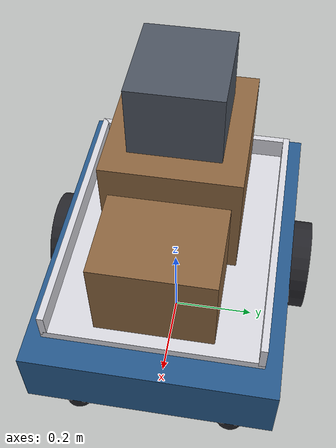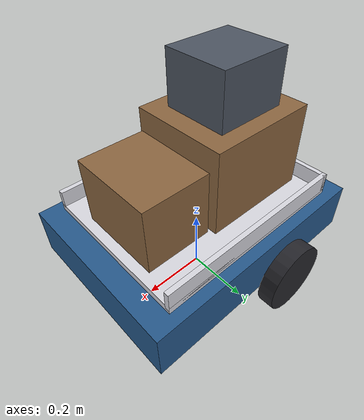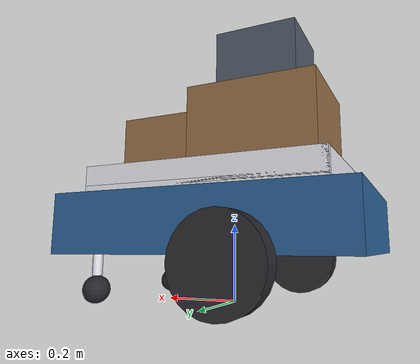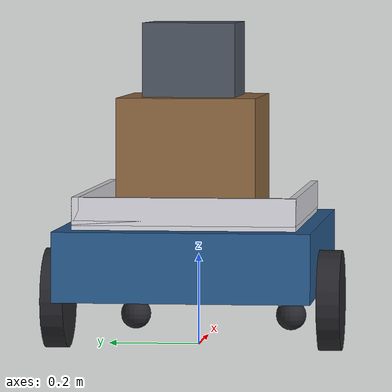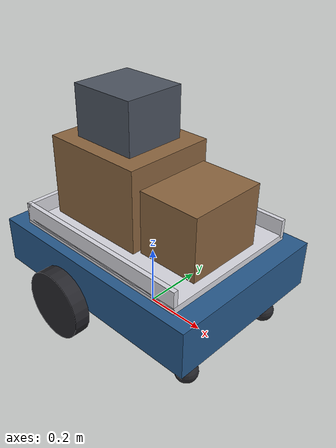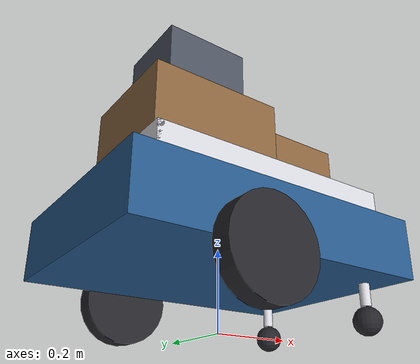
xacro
<?xml version="1.0"?>
<robot xmlns:xacro="http://www.ros.org/wiki/xacro">

  <!-- ============================ Dimensions ============================ -->
  <xacro:property name="chassis_length" value="0.75"/>
  <xacro:property name="chassis_width"  value="0.55"/>
  <xacro:property name="chassis_height" value="0.15"/>
  <xacro:property name="chassis_mass"   value="22.0"/>

  <xacro:property name="wheel_radius"   value="0.11"/>
  <xacro:property name="wheel_width"    value="0.05"/>
  <xacro:property name="wheel_mass"     value="2.2"/>

  <xacro:property name="caster_radius"  value="0.035"/>
  <xacro:property name="caster_mass"    value="0.3"/>

  <xacro:property name="caster_x"       value="0.31"/>
  <xacro:property name="caster_dy"      value="0.18"/>   <!-- +-Y of the pair -->

  <xacro:property name="wheel_x"        value="-0.10"/>

  <!-- Chassis centre height. The wheel axle must sit exactly one wheel radius
       above the ground, so the wheel joints are lowered by this difference. -->
  <xacro:property name="base_height"    value="0.20"/>
  <xacro:property name="wheel_dz"       value="${wheel_radius - base_height}"/>
  <xacro:property name="caster_dz"      value="${caster_radius - base_height}"/>

  <!-- Half the chassis width plus half a wheel: the wheels sit just outside
       the body. This value feeds the DiffDrive plugin as wheel_separation. -->
  <xacro:property name="wheel_dy"       value="${chassis_width/2 + wheel_width/2}"/>
  <xacro:property name="wheel_separation" value="${2*wheel_dy}"/>

  <xacro:property name="sensor_x"       value="0.41"/>
  <xacro:property name="mast_post_x"    value="0.33"/>
  <xacro:property name="lidar_height"   value="0.25"/>
  <xacro:property name="camera_height"  value="1.00"/>

  <xacro:property name="platform_length" value="0.62"/>
  <xacro:property name="platform_width"  value="0.48"/>
  <xacro:property name="platform_thick"  value="0.02"/>
  <xacro:property name="rail_height"     value="0.06"/>
  <xacro:property name="rail_thick"      value="0.015"/>

  <xacro:property name="crate_a" value="0.34 0.30 0.26"/>   <!-- lower crate -->
  <xacro:property name="crate_b" value="0.22 0.20 0.16"/>   <!-- stacked box -->
  <xacro:property name="crate_c" value="0.20 0.26 0.20"/>   <!-- parcel beside -->

  <!-- ============================= Materials ============================ -->
  <material name="porter_body">  <color rgba="0.15 0.35 0.55 1"/></material>
  <material name="porter_dark">  <color rgba="0.15 0.15 0.17 1"/></material>
  <material name="porter_accent"><color rgba="0.85 0.85 0.88 1"/></material>
  <material name="porter_crate"> <color rgba="0.55 0.40 0.25 1"/></material>
  <material name="porter_parcel"><color rgba="0.30 0.33 0.38 1"/></material>

  <!-- ============================== Macros ============================== -->
  <!-- Solid box inertia about its own centre. -->
  <xacro:macro name="box_inertia" params="m x y z">
    <inertial>
      <mass value="${m}"/>
      <inertia ixx="${m*(y*y+z*z)/12}" ixy="0" ixz="0"
               iyy="${m*(x*x+z*z)/12}" iyz="0"
               izz="${m*(x*x+y*y)/12}"/>
    </inertial>
  </xacro:macro>

  <!-- Solid sphere inertia about its own centre. -->
  <xacro:macro name="sphere_inertia" params="m r">
    <inertial>
      <mass value="${m}"/>
      <inertia ixx="${2*m*r*r/5}" ixy="0" ixz="0"
               iyy="${2*m*r*r/5}" iyz="0"
               izz="${2*m*r*r/5}"/>
    </inertial>
  </xacro:macro>

  <xacro:macro name="drive_wheel" params="prefix side">
    <link name="${prefix}_wheel_link">
      <visual>
        <origin xyz="0 0 0" rpy="${pi/2} 0 0"/>
        <geometry><cylinder radius="${wheel_radius}" length="${wheel_width}"/></geometry>
        <material name="porter_dark"/>
      </visual>
      <collision>
        <origin xyz="0 0 0" rpy="${pi/2} 0 0"/>
        <geometry><cylinder radius="${wheel_radius}" length="${wheel_width}"/></geometry>
      </collision>
      <inertial>
        <origin xyz="0 0 0" rpy="${pi/2} 0 0"/>
        <mass value="${wheel_mass}"/>
        <inertia ixx="${wheel_mass*(3*wheel_radius*wheel_radius + wheel_width*wheel_width)/12}" ixy="0" ixz="0"
                 iyy="${wheel_mass*(3*wheel_radius*wheel_radius + wheel_width*wheel_width)/12}" iyz="0"
                 izz="${wheel_mass*wheel_radius*wheel_radius/2}"/>
      </inertial>
    </link>

    <joint name="${prefix}_wheel_joint" type="continuous">
      <parent link="base_link"/>
      <child  link="${prefix}_wheel_link"/>
      <origin xyz="${wheel_x} ${side*wheel_dy} ${wheel_dz}" rpy="0 0 0"/>
      <axis xyz="0 1 0"/>
    </joint>

    <!-- Grip: the wheels must not slip, otherwise odometry drifts badly. -->
    <gazebo reference="${prefix}_wheel_link">
      <mu1>1.2</mu1>
      <mu2>1.2</mu2>
    </gazebo>
  </xacro:macro>

  <xacro:property name="caster_strut_radius" value="0.013"/>
  <!-- Leg from the chassis underside down to the top of the ball. -->
  <xacro:property name="caster_strut_length"
                  value="${base_height - chassis_height/2 - 2*caster_radius}"/>

  <xacro:macro name="caster" params="prefix side">
    <link name="${prefix}_caster_link">
      <visual>
        <geometry><sphere radius="${caster_radius}"/></geometry>
        <material name="porter_dark"/>
      </visual>
      <!-- Thin leg, drawn upwards from the ball to the chassis. -->
      <visual>
        <origin xyz="0 0 ${caster_radius + caster_strut_length/2}" rpy="0 0 0"/>
        <geometry>
          <cylinder radius="${caster_strut_radius}" length="${caster_strut_length}"/>
        </geometry>
        <material name="porter_accent"/>
      </visual>
      <collision>
        <geometry><sphere radius="${caster_radius}"/></geometry>
      </collision>
      <xacro:sphere_inertia m="${caster_mass}" r="${caster_radius}"/>
    </link>

    <joint name="${prefix}_caster_joint" type="fixed">
      <parent link="base_link"/>
      <child  link="${prefix}_caster_link"/>
      <origin xyz="${caster_x} ${side*caster_dy} ${caster_dz}" rpy="0 0 0"/>
    </joint>

    <gazebo reference="${prefix}_caster_link">
      <mu1>0.0</mu1>
      <mu2>0.0</mu2>
    </gazebo>
  </xacro:macro>

  <!-- ============================== Links =============================== -->
  <!-- Massless reference frame on the ground, directly below base_link. -->
  <link name="base_footprint"/>

  <joint name="base_joint" type="fixed">
    <parent link="base_footprint"/>
    <child  link="base_link"/>
    <origin xyz="0 0 ${base_height}" rpy="0 0 0"/>
  </joint>

  <link name="base_link">
    <visual>
      <geometry><box size="${chassis_length} ${chassis_width} ${chassis_height}"/></geometry>
      <material name="porter_body"/>
    </visual>
    <collision>
      <geometry><box size="${chassis_length} ${chassis_width} ${chassis_height}"/></geometry>
    </collision>
    <xacro:box_inertia m="${chassis_mass}" x="${chassis_length}"
                       y="${chassis_width}" z="${chassis_height}"/>
  </link>

  <link name="cargo_deck_link">
    <visual>
      <geometry><box size="${platform_length} ${platform_width} ${platform_thick}"/></geometry>
      <material name="porter_accent"/>
    </visual>
    <visual>
      <origin xyz="0 ${platform_width/2 - rail_thick/2} ${rail_height/2}"/>
      <geometry><box size="${platform_length} ${rail_thick} ${rail_height}"/></geometry>
      <material name="porter_accent"/>
    </visual>
    <visual>
      <origin xyz="0 ${-platform_width/2 + rail_thick/2} ${rail_height/2}"/>
      <geometry><box size="${platform_length} ${rail_thick} ${rail_height}"/></geometry>
      <material name="porter_accent"/>
    </visual>
    <visual>
      <origin xyz="${-platform_length/2 + rail_thick/2} 0 ${rail_height/2}"/>
      <geometry><box size="${rail_thick} ${platform_width} ${rail_height}"/></geometry>
      <material name="porter_accent"/>
    </visual>
    <!-- Cargo: a crate with a box stacked on it, and a parcel alongside.
         Each sits on the deck plate, so its centre is half its own height
         above the top face. -->
    <visual>
      <origin xyz="-0.10 0 ${platform_thick/2 + 0.13}"/>
      <geometry><box size="${crate_a}"/></geometry>
      <material name="porter_crate"/>
    </visual>
    <visual>
      <origin xyz="-0.10 0 ${platform_thick/2 + 0.26 + 0.08}"/>
      <geometry><box size="${crate_b}"/></geometry>
      <material name="porter_parcel"/>
    </visual>
    <visual>
      <origin xyz="0.18 0 ${platform_thick/2 + 0.10}"/>
      <geometry><box size="${crate_c}"/></geometry>
      <material name="porter_crate"/>
    </visual>

    <xacro:box_inertia m="2.0" x="${platform_length}"
                       y="${platform_width}" z="${platform_thick}"/>
  </link>

  <joint name="cargo_deck_joint" type="fixed">
    <parent link="base_link"/>
    <child  link="cargo_deck_link"/>
    <origin xyz="0 0 ${chassis_height/2 + platform_thick/2}" rpy="0 0 0"/>
  </joint>

  <xacro:drive_wheel prefix="left"  side="1"/>
  <xacro:drive_wheel prefix="right" side="-1"/>
  <xacro:caster      prefix="front_left"  side="1"/>
  <xacro:caster      prefix="front_right" side="-1"/>

  <!-- ============================= Gazebo =============================== -->
  <gazebo>
    <plugin filename="gz-sim-diff-drive-system"
            name="gz::sim::systems::DiffDrive">
      <left_joint>left_wheel_joint</left_joint>
      <right_joint>right_wheel_joint</right_joint>
      <wheel_separation>${wheel_separation}</wheel_separation>
      <wheel_radius>${wheel_radius}</wheel_radius>
      <topic>cmd_vel</topic>
      <odom_topic>odom</odom_topic>
      <tf_topic>/tf</tf_topic>
      <frame_id>odom</frame_id>
      <child_frame_id>base_footprint</child_frame_id>
      <odom_publish_frequency>50</odom_publish_frequency>
      <max_linear_acceleration>1.5</max_linear_acceleration>
    </plugin>

    <!-- Feeds /joint_states so robot_state_publisher can turn the wheels
         in RViz. Without it the wheels stay frozen in the visualisation. -->
    <plugin filename="gz-sim-joint-state-publisher-system"
            name="gz::sim::systems::JointStatePublisher">
      <topic>joint_states</topic>
      <!-- Without a rate limit this publishes at the physics step rate
           (~1000 Hz), which is far more than RViz needs. -->
      <update_rate>50</update_rate>
    </plugin>
  </gazebo>

</robot>
